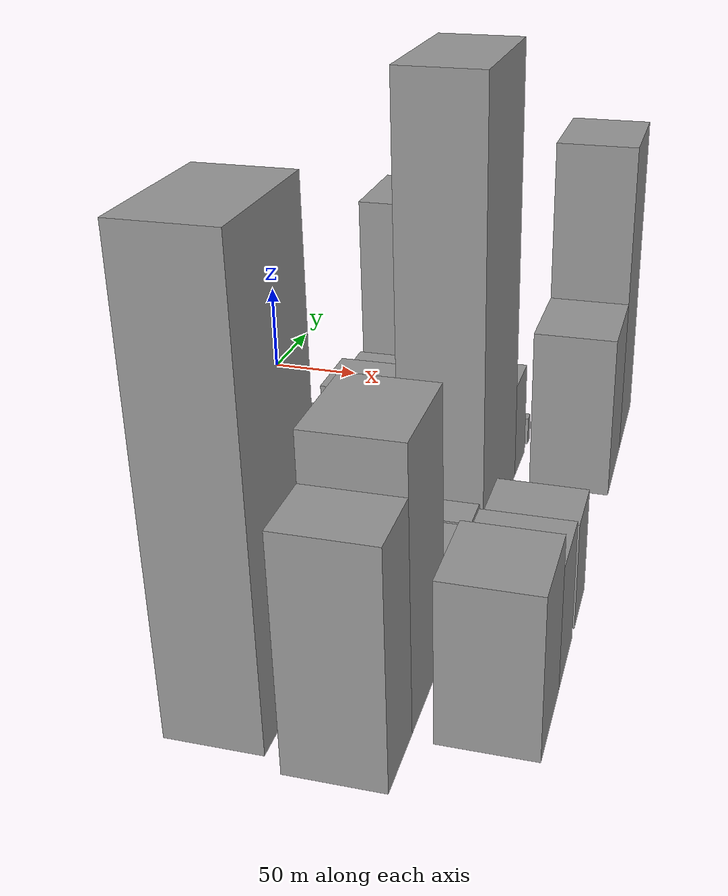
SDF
<sdf version="1.6">
 <world name="default">
  <model name="building_7">
   <static>1</static>
   <pose>100.0000 -288.8997 0 0.000000 0.000000 0.000000</pose>
   <link name="link">
    <pose>0 0 100.50 0 0 0</pose>
    <collision name="collision"><geometry><box><size>40.0000 65.2887 201.0000</size></box></geometry></collision>
    <visual name="visual">
     <cast_shadows>0</cast_shadows>
     <geometry><box><size>40.0000 65.2887 201.0000</size></box></geometry>
     <material>
      <script>
       <uri>model://grey_wall/materials/scripts</uri>
       <uri>model://grey_wall/materials/textures</uri>
       <name>vrc/grey_wall</name>
      </script>
     </material>
    </visual>
   </link>
  </model>
  <model name="building_8">
   <static>1</static>
   <pose>100.0000 -248.1924 0 0.000000 0.000000 0.000000</pose>
   <link name="link">
    <pose>0 0 10.50 0 0 0</pose>
    <collision name="collision"><geometry><box><size>40.0000 10.1259 21.0000</size></box></geometry></collision>
    <visual name="visual">
     <cast_shadows>0</cast_shadows>
     <geometry><box><size>40.0000 10.1259 21.0000</size></box></geometry>
     <material>
      <script>
       <uri>model://grey_wall/materials/scripts</uri>
       <uri>model://grey_wall/materials/textures</uri>
       <name>vrc/grey_wall</name>
      </script>
     </material>
    </visual>
   </link>
  </model>
  <model name="building_9">
   <static>1</static>
   <pose>100.0000 -220.3343 0 0.000000 0.000000 0.000000</pose>
   <link name="link">
    <pose>0 0 40.50 0 0 0</pose>
    <collision name="collision"><geometry><box><size>40.0000 45.5904 81.0000</size></box></geometry></collision>
    <visual name="visual">
     <cast_shadows>0</cast_shadows>
     <geometry><box><size>40.0000 45.5904 81.0000</size></box></geometry>
     <material>
      <script>
       <uri>model://grey_wall/materials/scripts</uri>
       <uri>model://grey_wall/materials/textures</uri>
       <name>vrc/grey_wall</name>
      </script>
     </material>
    </visual>
   </link>
  </model>
  <model name="building_10">
   <static>1</static>
   <pose>100.0000 -175.4471 0 0.000000 0.000000 0.000000</pose>
   <link name="link">
    <pose>0 0 27.00 0 0 0</pose>
    <collision name="collision"><geometry><box><size>40.0000 32.1840 54.0000</size></box></geometry></collision>
    <visual name="visual">
     <cast_shadows>0</cast_shadows>
     <geometry><box><size>40.0000 32.1840 54.0000</size></box></geometry>
     <material>
      <script>
       <uri>model://grey_wall/materials/scripts</uri>
       <uri>model://grey_wall/materials/textures</uri>
       <name>vrc/grey_wall</name>
      </script>
     </material>
    </visual>
   </link>
  </model>
  <model name="building_11">
   <static>1</static>
   <pose>100.0000 -149.4975 0 0.000000 0.000000 0.000000</pose>
   <link name="link">
    <pose>0 0 19.50 0 0 0</pose>
    <collision name="collision"><geometry><box><size>40.0000 19.7152 39.0000</size></box></geometry></collision>
    <visual name="visual">
     <cast_shadows>0</cast_shadows>
     <geometry><box><size>40.0000 19.7152 39.0000</size></box></geometry>
     <material>
      <script>
       <uri>model://grey_wall/materials/scripts</uri>
       <uri>model://grey_wall/materials/textures</uri>
       <name>vrc/grey_wall</name>
      </script>
     </material>
    </visual>
   </link>
  </model>
  <model name="building_12">
   <static>1</static>
   <pose>100.0000 -122.9814 0 0.000000 0.000000 0.000000</pose>
   <link name="link">
    <pose>0 0 30.00 0 0 0</pose>
    <collision name="collision"><geometry><box><size>40.0000 33.3170 60.0000</size></box></geometry></collision>
    <visual name="visual">
     <cast_shadows>0</cast_shadows>
     <geometry><box><size>40.0000 33.3170 60.0000</size></box></geometry>
     <material>
      <script>
       <uri>model://grey_wall/materials/scripts</uri>
       <uri>model://grey_wall/materials/textures</uri>
       <name>vrc/grey_wall</name>
      </script>
     </material>
    </visual>
   </link>
  </model>
  <model name="building_13">
   <static>1</static>
   <pose>100.0000 -91.6072 0 0.000000 0.000000 0.000000</pose>
   <link name="link">
    <pose>0 0 25.50 0 0 0</pose>
    <collision name="collision"><geometry><box><size>40.0000 29.4314 51.0000</size></box></geometry></collision>
    <visual name="visual">
     <cast_shadows>0</cast_shadows>
     <geometry><box><size>40.0000 29.4314 51.0000</size></box></geometry>
     <material>
      <script>
       <uri>model://grey_wall/materials/scripts</uri>
       <uri>model://grey_wall/materials/textures</uri>
       <name>vrc/grey_wall</name>
      </script>
     </material>
    </visual>
   </link>
  </model>
  <model name="building_14">
   <static>1</static>
   <pose>100.0000 -46.2894 0 0.000000 0.000000 0.000000</pose>
   <link name="link">
    <pose>0 0 66.00 0 0 0</pose>
    <collision name="collision"><geometry><box><size>40.0000 51.2043 132.0000</size></box></geometry></collision>
    <visual name="visual">
     <cast_shadows>0</cast_shadows>
     <geometry><box><size>40.0000 51.2043 132.0000</size></box></geometry>
     <material>
      <script>
       <uri>model://grey_wall/materials/scripts</uri>
       <uri>model://grey_wall/materials/textures</uri>
       <name>vrc/grey_wall</name>
      </script>
     </material>
    </visual>
   </link>
  </model>
  <model name="building_37">
   <static>1</static>
   <pose>149.0000 -313.2042 0 0.000000 0.000000 0.000000</pose>
   <link name="link">
    <pose>0 0 51.00 0 0 0</pose>
    <collision name="collision"><geometry><box><size>40.0000 31.0270 102.0000</size></box></geometry></collision>
    <visual name="visual">
     <cast_shadows>0</cast_shadows>
     <geometry><box><size>40.0000 31.0270 102.0000</size></box></geometry>
     <material>
      <script>
       <uri>model://grey_wall/materials/scripts</uri>
       <uri>model://grey_wall/materials/textures</uri>
       <name>vrc/grey_wall</name>
      </script>
     </material>
    </visual>
   </link>
  </model>
  <model name="building_38">
   <static>1</static>
   <pose>149.0000 -273.9152 0 0.000000 0.000000 0.000000</pose>
   <link name="link">
    <pose>0 0 61.50 0 0 0</pose>
    <collision name="collision"><geometry><box><size>40.0000 47.5510 123.0000</size></box></geometry></collision>
    <visual name="visual">
     <cast_shadows>0</cast_shadows>
     <geometry><box><size>40.0000 47.5510 123.0000</size></box></geometry>
     <material>
      <script>
       <uri>model://grey_wall/materials/scripts</uri>
       <uri>model://grey_wall/materials/textures</uri>
       <name>vrc/grey_wall</name>
      </script>
     </material>
    </visual>
   </link>
  </model>
  <model name="building_39">
   <static>1</static>
   <pose>149.0000 -229.0265 0 0.000000 0.000000 0.000000</pose>
   <link name="link">
    <pose>0 0 21.00 0 0 0</pose>
    <collision name="collision"><geometry><box><size>40.0000 24.2266 42.0000</size></box></geometry></collision>
    <visual name="visual">
     <cast_shadows>0</cast_shadows>
     <geometry><box><size>40.0000 24.2266 42.0000</size></box></geometry>
     <material>
      <script>
       <uri>model://grey_wall/materials/scripts</uri>
       <uri>model://grey_wall/materials/textures</uri>
       <name>vrc/grey_wall</name>
      </script>
     </material>
    </visual>
   </link>
  </model>
  <model name="building_40">
   <static>1</static>
   <pose>149.0000 -205.2852 0 0.000000 0.000000 0.000000</pose>
   <link name="link">
    <pose>0 0 7.50 0 0 0</pose>
    <collision name="collision"><geometry><box><size>40.0000 7.2558 15.0000</size></box></geometry></collision>
    <visual name="visual">
     <cast_shadows>0</cast_shadows>
     <geometry><box><size>40.0000 7.2558 15.0000</size></box></geometry>
     <material>
      <script>
       <uri>model://grey_wall/materials/scripts</uri>
       <uri>model://grey_wall/materials/textures</uri>
       <name>vrc/grey_wall</name>
      </script>
     </material>
    </visual>
   </link>
  </model>
  <model name="building_41">
   <static>1</static>
   <pose>149.0000 -193.0816 0 0.000000 0.000000 0.000000</pose>
   <link name="link">
    <pose>0 0 16.50 0 0 0</pose>
    <collision name="collision"><geometry><box><size>40.0000 17.1515 33.0000</size></box></geometry></collision>
    <visual name="visual">
     <cast_shadows>0</cast_shadows>
     <geometry><box><size>40.0000 17.1515 33.0000</size></box></geometry>
     <material>
      <script>
       <uri>model://grey_wall/materials/scripts</uri>
       <uri>model://grey_wall/materials/textures</uri>
       <name>vrc/grey_wall</name>
      </script>
     </material>
    </visual>
   </link>
  </model>
  <model name="building_42">
   <static>1</static>
   <pose>149.0000 -138.0762 0 0.000000 0.000000 0.000000</pose>
   <link name="link">
    <pose>0 0 111.00 0 0 0</pose>
    <collision name="collision"><geometry><box><size>40.0000 76.8591 222.0000</size></box></geometry></collision>
    <visual name="visual">
     <cast_shadows>0</cast_shadows>
     <geometry><box><size>40.0000 76.8591 222.0000</size></box></geometry>
     <material>
      <script>
       <uri>model://grey_wall/materials/scripts</uri>
       <uri>model://grey_wall/materials/textures</uri>
       <name>vrc/grey_wall</name>
      </script>
     </material>
    </visual>
   </link>
  </model>
  <model name="building_43">
   <static>1</static>
   <pose>149.0000 -86.1121 0 0.000000 0.000000 0.000000</pose>
   <link name="link">
    <pose>0 0 25.50 0 0 0</pose>
    <collision name="collision"><geometry><box><size>40.0000 27.0691 51.0000</size></box></geometry></collision>
    <visual name="visual">
     <cast_shadows>0</cast_shadows>
     <geometry><box><size>40.0000 27.0691 51.0000</size></box></geometry>
     <material>
      <script>
       <uri>model://grey_wall/materials/scripts</uri>
       <uri>model://grey_wall/materials/textures</uri>
       <name>vrc/grey_wall</name>
      </script>
     </material>
    </visual>
   </link>
  </model>
  <model name="building_44">
   <static>1</static>
   <pose>149.0000 -60.4198 0 0.000000 0.000000 0.000000</pose>
   <link name="link">
    <pose>0 0 7.50 0 0 0</pose>
    <collision name="collision"><geometry><box><size>40.0000 6.3156 15.0000</size></box></geometry></collision>
    <visual name="visual">
     <cast_shadows>0</cast_shadows>
     <geometry><box><size>40.0000 6.3156 15.0000</size></box></geometry>
     <material>
      <script>
       <uri>model://grey_wall/materials/scripts</uri>
       <uri>model://grey_wall/materials/textures</uri>
       <name>vrc/grey_wall</name>
      </script>
     </material>
    </visual>
   </link>
  </model>
  <model name="building_68">
   <static>1</static>
   <pose>198.0000 -280.5245 0 0.000000 0.000000 0.000000</pose>
   <link name="link">
    <pose>0 0 36.00 0 0 0</pose>
    <collision name="collision"><geometry><box><size>40.0000 40.2789 72.0000</size></box></geometry></collision>
    <visual name="visual">
     <cast_shadows>0</cast_shadows>
     <geometry><box><size>40.0000 40.2789 72.0000</size></box></geometry>
     <material>
      <script>
       <uri>model://grey_wall/materials/scripts</uri>
       <uri>model://grey_wall/materials/textures</uri>
       <name>vrc/grey_wall</name>
      </script>
     </material>
    </visual>
   </link>
  </model>
  <model name="building_69">
   <static>1</static>
   <pose>198.0000 -243.4772 0 0.000000 0.000000 0.000000</pose>
   <link name="link">
    <pose>0 0 28.50 0 0 0</pose>
    <collision name="collision"><geometry><box><size>40.0000 33.8158 57.0000</size></box></geometry></collision>
    <visual name="visual">
     <cast_shadows>0</cast_shadows>
     <geometry><box><size>40.0000 33.8158 57.0000</size></box></geometry>
     <material>
      <script>
       <uri>model://grey_wall/materials/scripts</uri>
       <uri>model://grey_wall/materials/textures</uri>
       <name>vrc/grey_wall</name>
      </script>
     </material>
    </visual>
   </link>
  </model>
  <model name="building_70">
   <static>1</static>
   <pose>198.0000 -205.1557 0 0.000000 0.000000 0.000000</pose>
   <link name="link">
    <pose>0 0 25.50 0 0 0</pose>
    <collision name="collision"><geometry><box><size>40.0000 28.8272 51.0000</size></box></geometry></collision>
    <visual name="visual">
     <cast_shadows>0</cast_shadows>
     <geometry><box><size>40.0000 28.8272 51.0000</size></box></geometry>
     <material>
      <script>
       <uri>model://grey_wall/materials/scripts</uri>
       <uri>model://grey_wall/materials/textures</uri>
       <name>vrc/grey_wall</name>
      </script>
     </material>
    </visual>
   </link>
  </model>
  <model name="building_71">
   <static>1</static>
   <pose>198.0000 -82.9867 0 0.000000 0.000000 0.000000</pose>
   <link name="link">
    <pose>0 0 42.00 0 0 0</pose>
    <collision name="collision"><geometry><box><size>40.0000 48.5036 84.0000</size></box></geometry></collision>
    <visual name="visual">
     <cast_shadows>0</cast_shadows>
     <geometry><box><size>40.0000 48.5036 84.0000</size></box></geometry>
     <material>
      <script>
       <uri>model://grey_wall/materials/scripts</uri>
       <uri>model://grey_wall/materials/textures</uri>
       <name>vrc/grey_wall</name>
      </script>
     </material>
    </visual>
   </link>
  </model>
  <model name="building_72">
   <static>1</static>
   <pose>198.0000 -31.3602 0 0.000000 0.000000 0.000000</pose>
   <link name="link">
    <pose>0 0 82.50 0 0 0</pose>
    <collision name="collision"><geometry><box><size>40.0000 54.7495 165.0000</size></box></geometry></collision>
    <visual name="visual">
     <cast_shadows>0</cast_shadows>
     <geometry><box><size>40.0000 54.7495 165.0000</size></box></geometry>
     <material>
      <script>
       <uri>model://grey_wall/materials/scripts</uri>
       <uri>model://grey_wall/materials/textures</uri>
       <name>vrc/grey_wall</name>
      </script>
     </material>
    </visual>
   </link>
  </model>
 </world>
</sdf>
